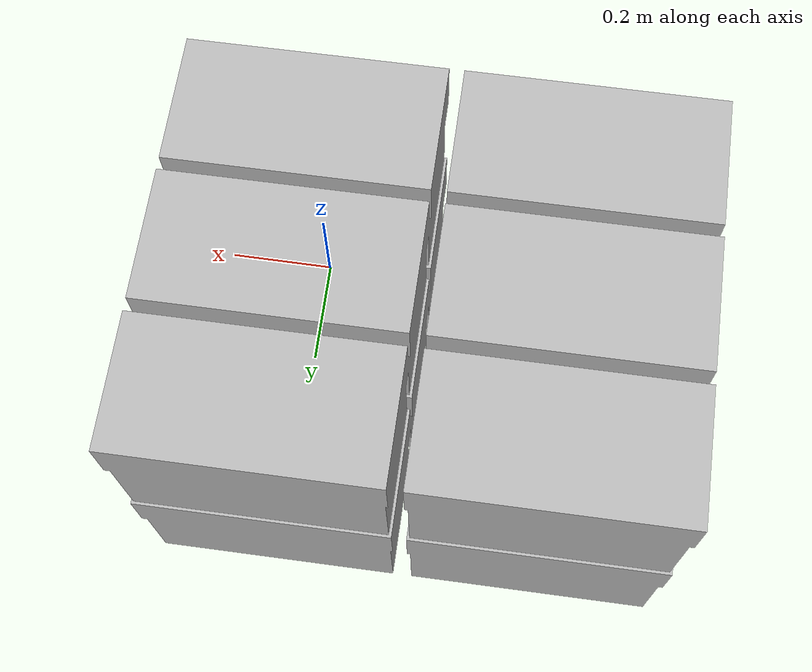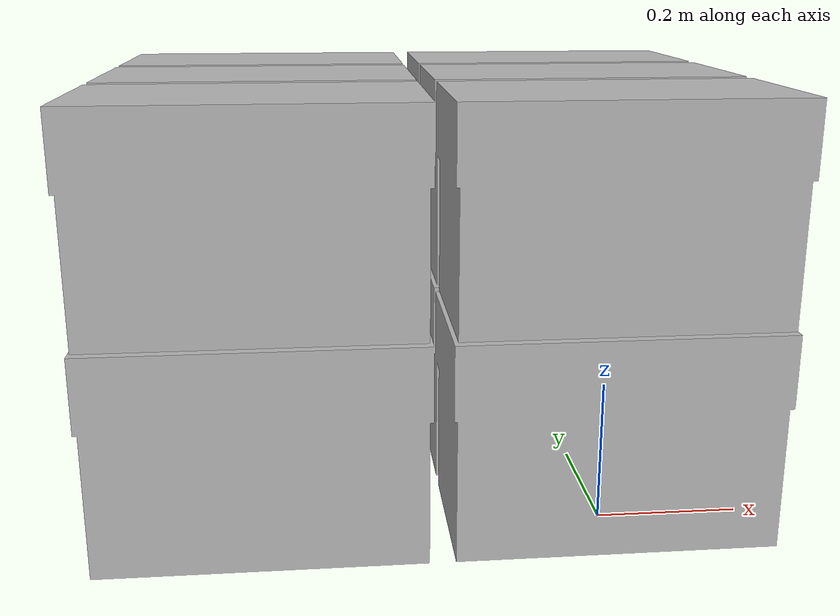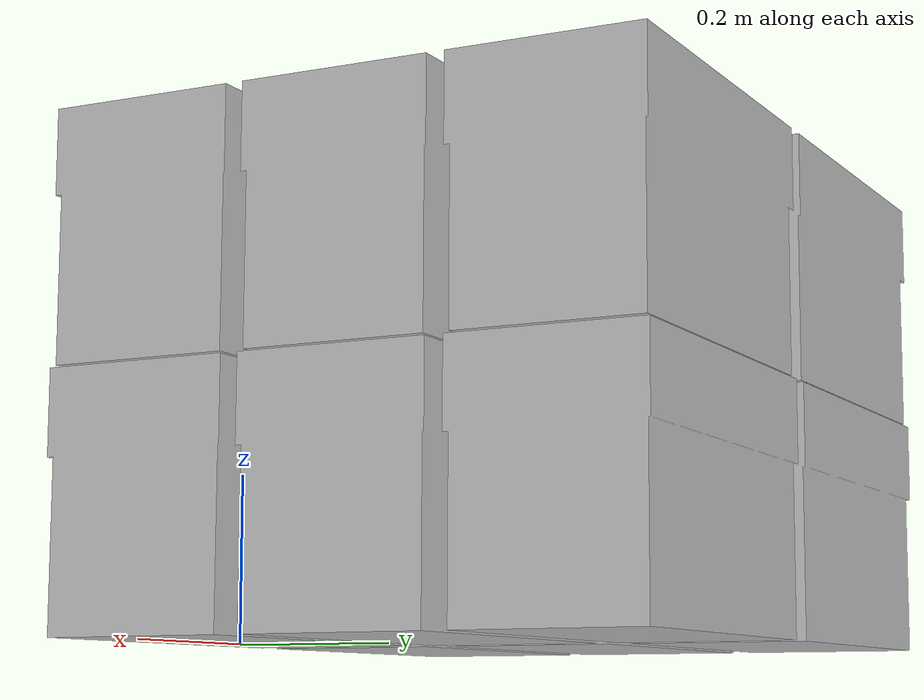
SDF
<?xml version="1.0" ?>
<sdf version="1.5">
  <model name="green_box">

    <pose>0 0 0  0 0 0</pose>

    <static>true</static>
    <link name="link">
      <inertial>
        <mass>97.976</mass>
        <inertia>
          <ixx>1</ixx>
          <ixy>0</ixy>
          <ixz>0</ixz>
          <iyy>1</iyy>
          <iyz>0</iyz>
          <izz>1</izz>
        </inertia>
      </inertial>

      <collision name="collision">
	    <pose>0 0 0  0 0 0</pose>
        <geometry>
          <mesh>
            <uri>model://green_box/meshes/green_stack.dae</uri>
          </mesh>
        </geometry>
      </collision>

      <visual name="visual">
        <geometry>
          <mesh>
            <uri>model://green_box/meshes/green_stack.dae</uri>
          </mesh>
        </geometry>
      </visual>
    </link>
  </model>
</sdf>
